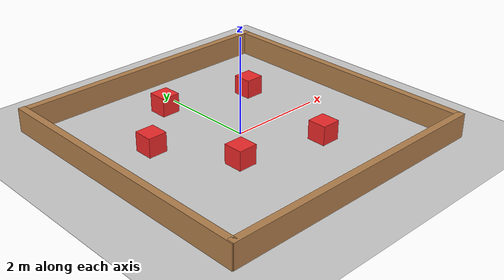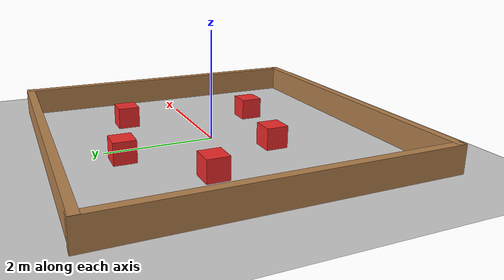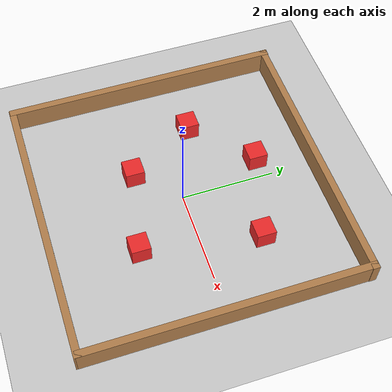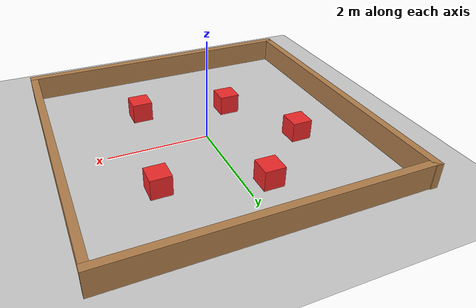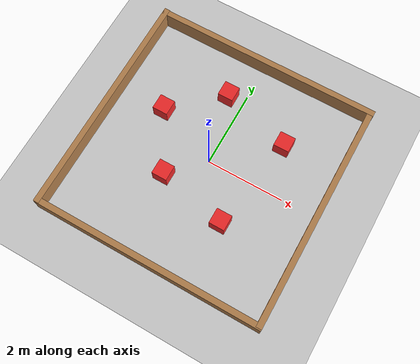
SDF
<sdf version="1.7">
 <world name="default">
  <light name="sun" type="directional">
   <pose>0 0 10 0 -0 0</pose>
   <diffuse>0.8 0.8 0.8 1</diffuse>
   <specular>0.2 0.2 0.2 1</specular>
   <attenuation>
    <range>1000</range>
    <constant>0.9</constant>
    <linear>0.01</linear>
    <quadratic>0.001</quadratic>
   </attenuation>
   <direction>-0.5 0.1 -0.9</direction>
   <spot><inner_angle>0</inner_angle><outer_angle>0</outer_angle><falloff>0</falloff></spot>
  </light>
  <model name="ground_plane">
   <static>1</static>
   <link name="link">
    <collision name="collision">
     <geometry><plane><normal>0 0 1</normal><size>100 100</size></plane></geometry>
     <surface>
      <contact><collide_bitmask>65535</collide_bitmask></contact>
      <friction><ode><mu>100</mu><mu2>50</mu2></ode></friction>
     </surface>
    </collision>
    <visual name="visual">
     <cast_shadows>0</cast_shadows>
     <geometry><plane><normal>0 0 1</normal><size>100 100</size></plane></geometry>
     <material>
      <script><uri>file://media/materials/scripts/gazebo.material</uri><name>Gazebo/Grey</name></script>
     </material>
    </visual>
   </link>
  </model>
  <physics name="default_physics" default="0" type="ode">
   <real_time_update_rate>1000</real_time_update_rate>
   <max_step_size>0.001</max_step_size>
   <real_time_factor>1</real_time_factor>
   <ode>
    <solver>
     <type>quick</type>
     <iters>150</iters>
     <precon_iters>0</precon_iters>
     <sor>1.4</sor>
     <use_dynamic_moi_rescaling>1</use_dynamic_moi_rescaling>
    </solver>
    <constraints>
     <cfm>1e-05</cfm>
     <erp>0.2</erp>
     <contact_max_correcting_vel>2000</contact_max_correcting_vel>
     <contact_surface_layer>0.01</contact_surface_layer>
    </constraints>
   </ode>
  </physics>
  <scene><ambient>0.4 0.4 0.4 1</ambient><background>0.7 0.7 0.7 1</background><shadows>1</shadows></scene>
  <gravity>0 0 -9.8</gravity>
  <magnetic_field>6e-06 2.3e-05 -4.2e-05</magnetic_field>
  <atmosphere type="adiabatic"/>
  <audio><device>default</device></audio>
  <spherical_coordinates>
   <surface_model>EARTH_WGS84</surface_model>
   <latitude_deg>0</latitude_deg>
   <longitude_deg>0</longitude_deg>
   <elevation>0</elevation>
   <heading_deg>0</heading_deg>
  </spherical_coordinates>
  <model name="turtlebot3_square_1">
   <link name="Wall_0">
    <pose>0 2.91352 0 0 -0 0</pose>
    <inertial>
     <inertia><ixx>0</ixx><ixy>0</ixy><ixz>0</ixz><iyy>0</iyy><iyz>0</iyz><izz>0</izz></inertia>
     <mass>0</mass>
    </inertial>
    <visual name="Wall_0_Visual">
     <pose>0 0 0.25 0 -0 0</pose>
     <geometry><box><size>6.0095 0.15 0.5</size></box></geometry>
     <material>
      <script><uri>file://media/materials/scripts/gazebo.material</uri><name>Gazebo/Wood</name></script>
      <ambient>1 1 1 1</ambient>
      <shader type="pixel"/>
     </material>
    </visual>
    <collision name="Wall_0_Collision">
     <pose>0 0 0.25 0 -0 0</pose>
     <geometry><box><size>6.0095 0.15 0.5</size></box></geometry>
     <surface>
      <friction>
       <ode><mu>1</mu><mu2>1</mu2><fdir1>0 0 0</fdir1><slip1>0</slip1><slip2>0</slip2></ode>
       <torsional>
        <coefficient>1</coefficient>
        <patch_radius>0</patch_radius>
        <surface_radius>0</surface_radius>
        <use_patch_radius>1</use_patch_radius>
        <ode><slip>0</slip></ode>
       </torsional>
      </friction>
      <bounce><restitution_coefficient>0</restitution_coefficient><threshold>1e+06</threshold></bounce>
      <contact>
       <collide_without_contact>0</collide_without_contact>
       <collide_without_contact_bitmask>1</collide_without_contact_bitmask>
       <collide_bitmask>1</collide_bitmask>
       <ode>
        <soft_cfm>0</soft_cfm>
        <soft_erp>0.2</soft_erp>
        <kp>1e+13</kp>
        <kd>1</kd>
        <max_vel>0.01</max_vel>
        <min_depth>0</min_depth>
       </ode>
       <bullet>
        <split_impulse>1</split_impulse>
        <split_impulse_penetration_threshold>-0.01</split_impulse_penetration_threshold>
        <soft_cfm>0</soft_cfm>
        <soft_erp>0.2</soft_erp>
        <kp>1e+13</kp>
        <kd>1</kd>
       </bullet>
      </contact>
     </surface>
    </collision>
   </link>
   <link name="Wall_2">
    <pose>-2.93948 4e-06 0 0 0 -1.5708</pose>
    <inertial>
     <inertia><ixx>0</ixx><ixy>0</ixy><ixz>0</ixz><iyy>0</iyy><iyz>0</iyz><izz>0</izz></inertia>
     <mass>0</mass>
    </inertial>
    <visual name="Wall_2_Visual">
     <pose>0 0 0.25 0 -0 0</pose>
     <geometry><box><size>6.009 0.15 0.5</size></box></geometry>
     <material>
      <script><uri>file://media/materials/scripts/gazebo.material</uri><name>Gazebo/Wood</name></script>
      <ambient>1 1 1 1</ambient>
      <shader type="pixel"/>
     </material>
    </visual>
    <collision name="Wall_2_Collision">
     <pose>0 0 0.25 0 -0 0</pose>
     <geometry><box><size>6.009 0.15 0.5</size></box></geometry>
     <surface>
      <friction>
       <ode><mu>1</mu><mu2>1</mu2><fdir1>0 0 0</fdir1><slip1>0</slip1><slip2>0</slip2></ode>
       <torsional>
        <coefficient>1</coefficient>
        <patch_radius>0</patch_radius>
        <surface_radius>0</surface_radius>
        <use_patch_radius>1</use_patch_radius>
        <ode><slip>0</slip></ode>
       </torsional>
      </friction>
      <bounce><restitution_coefficient>0</restitution_coefficient><threshold>1e+06</threshold></bounce>
      <contact>
       <collide_without_contact>0</collide_without_contact>
       <collide_without_contact_bitmask>1</collide_without_contact_bitmask>
       <collide_bitmask>1</collide_bitmask>
       <ode>
        <soft_cfm>0</soft_cfm>
        <soft_erp>0.2</soft_erp>
        <kp>1e+13</kp>
        <kd>1</kd>
        <max_vel>0.01</max_vel>
        <min_depth>0</min_depth>
       </ode>
       <bullet>
        <split_impulse>1</split_impulse>
        <split_impulse_penetration_threshold>-0.01</split_impulse_penetration_threshold>
        <soft_cfm>0</soft_cfm>
        <soft_erp>0.2</soft_erp>
        <kp>1e+13</kp>
        <kd>1</kd>
       </bullet>
      </contact>
     </surface>
    </collision>
   </link>
   <link name="Wall_3">
    <pose>0 -2.93928 0 0 -0 0</pose>
    <inertial>
     <inertia><ixx>0</ixx><ixy>0</ixy><ixz>0</ixz><iyy>0</iyy><iyz>0</iyz><izz>0</izz></inertia>
     <mass>0</mass>
    </inertial>
    <visual name="Wall_3_Visual">
     <pose>0 0 0.25 0 -0 0</pose>
     <geometry><box><size>5.98504 0.15 0.5</size></box></geometry>
     <material>
      <script><uri>file://media/materials/scripts/gazebo.material</uri><name>Gazebo/Wood</name></script>
      <ambient>1 1 1 1</ambient>
      <shader type="pixel"/>
     </material>
    </visual>
    <collision name="Wall_3_Collision">
     <pose>0 0 0.25 0 -0 0</pose>
     <geometry><box><size>5.98504 0.15 0.5</size></box></geometry>
     <surface>
      <friction>
       <ode><mu>1</mu><mu2>1</mu2><fdir1>0 0 0</fdir1><slip1>0</slip1><slip2>0</slip2></ode>
       <torsional>
        <coefficient>1</coefficient>
        <patch_radius>0</patch_radius>
        <surface_radius>0</surface_radius>
        <use_patch_radius>1</use_patch_radius>
        <ode><slip>0</slip></ode>
       </torsional>
      </friction>
      <bounce><restitution_coefficient>0</restitution_coefficient><threshold>1e+06</threshold></bounce>
      <contact>
       <collide_without_contact>0</collide_without_contact>
       <collide_without_contact_bitmask>1</collide_without_contact_bitmask>
       <collide_bitmask>1</collide_bitmask>
       <ode>
        <soft_cfm>0</soft_cfm>
        <soft_erp>0.2</soft_erp>
        <kp>1e+13</kp>
        <kd>1</kd>
        <max_vel>0.01</max_vel>
        <min_depth>0</min_depth>
       </ode>
       <bullet>
        <split_impulse>1</split_impulse>
        <split_impulse_penetration_threshold>-0.01</split_impulse_penetration_threshold>
        <soft_cfm>0</soft_cfm>
        <soft_erp>0.2</soft_erp>
        <kp>1e+13</kp>
        <kd>1</kd>
       </bullet>
      </contact>
     </surface>
    </collision>
   </link>
   <link name="Wall_4">
    <pose>2.92002 4e-06 0 0 -0 1.5708</pose>
    <inertial>
     <inertia><ixx>0</ixx><ixy>0</ixy><ixz>0</ixz><iyy>0</iyy><iyz>0</iyz><izz>0</izz></inertia>
     <mass>0</mass>
    </inertial>
    <visual name="Wall_4_Visual">
     <pose>0 0 0.25 0 -0 0</pose>
     <geometry><box><size>5.96238 0.15 0.5</size></box></geometry>
     <material>
      <script><uri>file://media/materials/scripts/gazebo.material</uri><name>Gazebo/Wood</name></script>
      <ambient>1 1 1 1</ambient>
      <shader type="pixel"/>
     </material>
    </visual>
    <collision name="Wall_4_Collision">
     <pose>0 0 0.25 0 -0 0</pose>
     <geometry><box><size>5.96238 0.15 0.5</size></box></geometry>
     <surface>
      <friction>
       <ode><mu>1</mu><mu2>1</mu2><fdir1>0 0 0</fdir1><slip1>0</slip1><slip2>0</slip2></ode>
       <torsional>
        <coefficient>1</coefficient>
        <patch_radius>0</patch_radius>
        <surface_radius>0</surface_radius>
        <use_patch_radius>1</use_patch_radius>
        <ode><slip>0</slip></ode>
       </torsional>
      </friction>
      <bounce><restitution_coefficient>0</restitution_coefficient><threshold>1e+06</threshold></bounce>
      <contact>
       <collide_without_contact>0</collide_without_contact>
       <collide_without_contact_bitmask>1</collide_without_contact_bitmask>
       <collide_bitmask>1</collide_bitmask>
       <ode>
        <soft_cfm>0</soft_cfm>
        <soft_erp>0.2</soft_erp>
        <kp>1e+13</kp>
        <kd>1</kd>
        <max_vel>0.01</max_vel>
        <min_depth>0</min_depth>
       </ode>
       <bullet>
        <split_impulse>1</split_impulse>
        <split_impulse_penetration_threshold>-0.01</split_impulse_penetration_threshold>
        <soft_cfm>0</soft_cfm>
        <soft_erp>0.2</soft_erp>
        <kp>1e+13</kp>
        <kd>1</kd>
       </bullet>
      </contact>
     </surface>
    </collision>
   </link>
   <static>1</static>
  </model>
  <model name="block_box_red">
   <link name="link">
    <inertial>
     <mass>1</mass>
     <inertia>
      <ixx>0.166667</ixx>
      <ixy>0</ixy>
      <ixz>0</ixz>
      <iyy>0.166667</iyy>
      <iyz>0</iyz>
      <izz>0.166667</izz>
     </inertia>
    </inertial>
    <visual name="visual">
     <geometry><box><size>0.4 0.4 0.4</size></box></geometry>
     <material>
      <script><name>Gazebo/Grey</name><uri>file://media/materials/scripts/gazebo.material</uri></script>
      <shader type="pixel"><normal_map>__default__</normal_map></shader>
      <ambient>0.937 0.161 0.161 1</ambient>
      <diffuse>0.7 0.7 0.7 1</diffuse>
      <specular>0.01 0.01 0.01 1</specular>
      <emissive>0 0 0 1</emissive>
     </material>
    </visual>
    <collision name="collision">
     <geometry><box><size>0.4 0.4 0.4</size></box></geometry>
     <surface>
      <friction>
       <ode><mu>1</mu><mu2>1</mu2><fdir1>0 0 0</fdir1><slip1>0</slip1><slip2>0</slip2></ode>
       <torsional>
        <coefficient>1</coefficient>
        <patch_radius>0</patch_radius>
        <surface_radius>0</surface_radius>
        <use_patch_radius>1</use_patch_radius>
        <ode><slip>0</slip></ode>
       </torsional>
      </friction>
      <bounce><restitution_coefficient>0</restitution_coefficient><threshold>1e+06</threshold></bounce>
      <contact>
       <collide_without_contact>0</collide_without_contact>
       <collide_without_contact_bitmask>1</collide_without_contact_bitmask>
       <collide_bitmask>1</collide_bitmask>
       <ode>
        <soft_cfm>0</soft_cfm>
        <soft_erp>0.2</soft_erp>
        <kp>1e+13</kp>
        <kd>1</kd>
        <max_vel>0.01</max_vel>
        <min_depth>0</min_depth>
       </ode>
       <bullet>
        <split_impulse>1</split_impulse>
        <split_impulse_penetration_threshold>-0.01</split_impulse_penetration_threshold>
        <soft_cfm>0</soft_cfm>
        <soft_erp>0.2</soft_erp>
        <kp>1e+13</kp>
        <kd>1</kd>
       </bullet>
      </contact>
     </surface>
    </collision>
   </link>
   <static>1</static>
   <pose>1.40904 1.23436 0.191071 0 -0 0</pose>
  </model>
  <model name="block_box_red_0">
   <link name="link">
    <inertial>
     <mass>1</mass>
     <inertia>
      <ixx>0.166667</ixx>
      <ixy>0</ixy>
      <ixz>0</ixz>
      <iyy>0.166667</iyy>
      <iyz>0</iyz>
      <izz>0.166667</izz>
     </inertia>
    </inertial>
    <visual name="visual">
     <geometry><box><size>0.4 0.4 0.4</size></box></geometry>
     <material>
      <script><name>Gazebo/Grey</name><uri>file://media/materials/scripts/gazebo.material</uri></script>
      <shader type="pixel"><normal_map>__default__</normal_map></shader>
      <ambient>0.937 0.161 0.161 1</ambient>
      <diffuse>0.7 0.7 0.7 1</diffuse>
      <specular>0.01 0.01 0.01 1</specular>
      <emissive>0 0 0 1</emissive>
     </material>
    </visual>
    <collision name="collision">
     <geometry><box><size>0.4 0.4 0.4</size></box></geometry>
     <surface>
      <friction>
       <ode><mu>1</mu><mu2>1</mu2><fdir1>0 0 0</fdir1><slip1>0</slip1><slip2>0</slip2></ode>
       <torsional>
        <coefficient>1</coefficient>
        <patch_radius>0</patch_radius>
        <surface_radius>0</surface_radius>
        <use_patch_radius>1</use_patch_radius>
        <ode><slip>0</slip></ode>
       </torsional>
      </friction>
      <bounce><restitution_coefficient>0</restitution_coefficient><threshold>1e+06</threshold></bounce>
      <contact>
       <collide_without_contact>0</collide_without_contact>
       <collide_without_contact_bitmask>1</collide_without_contact_bitmask>
       <collide_bitmask>1</collide_bitmask>
       <ode>
        <soft_cfm>0</soft_cfm>
        <soft_erp>0.2</soft_erp>
        <kp>1e+13</kp>
        <kd>1</kd>
        <max_vel>0.01</max_vel>
        <min_depth>0</min_depth>
       </ode>
       <bullet>
        <split_impulse>1</split_impulse>
        <split_impulse_penetration_threshold>-0.01</split_impulse_penetration_threshold>
        <soft_cfm>0</soft_cfm>
        <soft_erp>0.2</soft_erp>
        <kp>1e+13</kp>
        <kd>1</kd>
       </bullet>
      </contact>
     </surface>
    </collision>
   </link>
   <static>1</static>
   <pose>-1.6521 0.642793 0.205218 0 -0 0</pose>
  </model>
  <model name="block_box_red_1">
   <link name="link">
    <inertial>
     <mass>1</mass>
     <inertia>
      <ixx>0.166667</ixx>
      <ixy>0</ixy>
      <ixz>0</ixz>
      <iyy>0.166667</iyy>
      <iyz>0</iyz>
      <izz>0.166667</izz>
     </inertia>
    </inertial>
    <visual name="visual">
     <geometry><box><size>0.4 0.4 0.4</size></box></geometry>
     <material>
      <script><name>Gazebo/Grey</name><uri>file://media/materials/scripts/gazebo.material</uri></script>
      <shader type="pixel"><normal_map>__default__</normal_map></shader>
      <ambient>0.937 0.161 0.161 1</ambient>
      <diffuse>0.7 0.7 0.7 1</diffuse>
      <specular>0.01 0.01 0.01 1</specular>
      <emissive>0 0 0 1</emissive>
     </material>
    </visual>
    <collision name="collision">
     <geometry><box><size>0.4 0.4 0.4</size></box></geometry>
     <surface>
      <friction>
       <ode><mu>1</mu><mu2>1</mu2><fdir1>0 0 0</fdir1><slip1>0</slip1><slip2>0</slip2></ode>
       <torsional>
        <coefficient>1</coefficient>
        <patch_radius>0</patch_radius>
        <surface_radius>0</surface_radius>
        <use_patch_radius>1</use_patch_radius>
        <ode><slip>0</slip></ode>
       </torsional>
      </friction>
      <bounce><restitution_coefficient>0</restitution_coefficient><threshold>1e+06</threshold></bounce>
      <contact>
       <collide_without_contact>0</collide_without_contact>
       <collide_without_contact_bitmask>1</collide_without_contact_bitmask>
       <collide_bitmask>1</collide_bitmask>
       <ode>
        <soft_cfm>0</soft_cfm>
        <soft_erp>0.2</soft_erp>
        <kp>1e+13</kp>
        <kd>1</kd>
        <max_vel>0.01</max_vel>
        <min_depth>0</min_depth>
       </ode>
       <bullet>
        <split_impulse>1</split_impulse>
        <split_impulse_penetration_threshold>-0.01</split_impulse_penetration_threshold>
        <soft_cfm>0</soft_cfm>
        <soft_erp>0.2</soft_erp>
        <kp>1e+13</kp>
        <kd>1</kd>
       </bullet>
      </contact>
     </surface>
    </collision>
   </link>
   <static>1</static>
   <pose>1.00015 -1.23159 0.206335 0 -0 0</pose>
  </model>
  <model name="block_box_red_2">
   <link name="link">
    <inertial>
     <mass>1</mass>
     <inertia>
      <ixx>0.166667</ixx>
      <ixy>0</ixy>
      <ixz>0</ixz>
      <iyy>0.166667</iyy>
      <iyz>0</iyz>
      <izz>0.166667</izz>
     </inertia>
    </inertial>
    <visual name="visual">
     <geometry><box><size>0.4 0.4 0.4</size></box></geometry>
     <material>
      <script><name>Gazebo/Grey</name><uri>file://media/materials/scripts/gazebo.material</uri></script>
      <shader type="pixel"><normal_map>__default__</normal_map></shader>
      <ambient>0.937 0.161 0.161 1</ambient>
      <diffuse>0.7 0.7 0.7 1</diffuse>
      <specular>0.01 0.01 0.01 1</specular>
      <emissive>0 0 0 1</emissive>
     </material>
    </visual>
    <collision name="collision">
     <geometry><box><size>0.4 0.4 0.4</size></box></geometry>
     <surface>
      <friction>
       <ode><mu>1</mu><mu2>1</mu2><fdir1>0 0 0</fdir1><slip1>0</slip1><slip2>0</slip2></ode>
       <torsional>
        <coefficient>1</coefficient>
        <patch_radius>0</patch_radius>
        <surface_radius>0</surface_radius>
        <use_patch_radius>1</use_patch_radius>
        <ode><slip>0</slip></ode>
       </torsional>
      </friction>
      <bounce><restitution_coefficient>0</restitution_coefficient><threshold>1e+06</threshold></bounce>
      <contact>
       <collide_without_contact>0</collide_without_contact>
       <collide_without_contact_bitmask>1</collide_without_contact_bitmask>
       <collide_bitmask>1</collide_bitmask>
       <ode>
        <soft_cfm>0</soft_cfm>
        <soft_erp>0.2</soft_erp>
        <kp>1e+13</kp>
        <kd>1</kd>
        <max_vel>0.01</max_vel>
        <min_depth>0</min_depth>
       </ode>
       <bullet>
        <split_impulse>1</split_impulse>
        <split_impulse_penetration_threshold>-0.01</split_impulse_penetration_threshold>
        <soft_cfm>0</soft_cfm>
        <soft_erp>0.2</soft_erp>
        <kp>1e+13</kp>
        <kd>1</kd>
       </bullet>
      </contact>
     </surface>
    </collision>
   </link>
   <static>1</static>
   <pose>-0.787263 -0.83767 0.214622 0 -0 0</pose>
  </model>
  <model name="block_box_red_3">
   <link name="link">
    <inertial>
     <mass>1</mass>
     <inertia>
      <ixx>0.166667</ixx>
      <ixy>0</ixy>
      <ixz>0</ixz>
      <iyy>0.166667</iyy>
      <iyz>0</iyz>
      <izz>0.166667</izz>
     </inertia>
    </inertial>
    <visual name="visual">
     <geometry><box><size>0.4 0.4 0.4</size></box></geometry>
     <material>
      <script><name>Gazebo/Grey</name><uri>file://media/materials/scripts/gazebo.material</uri></script>
      <shader type="pixel"><normal_map>__default__</normal_map></shader>
      <ambient>0.937 0.161 0.161 1</ambient>
      <diffuse>0.7 0.7 0.7 1</diffuse>
      <specular>0.01 0.01 0.01 1</specular>
      <emissive>0 0 0 1</emissive>
     </material>
    </visual>
    <collision name="collision">
     <geometry><box><size>0.4 0.4 0.4</size></box></geometry>
     <surface>
      <friction>
       <ode><mu>1</mu><mu2>1</mu2><fdir1>0 0 0</fdir1><slip1>0</slip1><slip2>0</slip2></ode>
       <torsional>
        <coefficient>1</coefficient>
        <patch_radius>0</patch_radius>
        <surface_radius>0</surface_radius>
        <use_patch_radius>1</use_patch_radius>
        <ode><slip>0</slip></ode>
       </torsional>
      </friction>
      <bounce><restitution_coefficient>0</restitution_coefficient><threshold>1e+06</threshold></bounce>
      <contact>
       <collide_without_contact>0</collide_without_contact>
       <collide_without_contact_bitmask>1</collide_without_contact_bitmask>
       <collide_bitmask>1</collide_bitmask>
       <ode>
        <soft_cfm>0</soft_cfm>
        <soft_erp>0.2</soft_erp>
        <kp>1e+13</kp>
        <kd>1</kd>
        <max_vel>0.01</max_vel>
        <min_depth>0</min_depth>
       </ode>
       <bullet>
        <split_impulse>1</split_impulse>
        <split_impulse_penetration_threshold>-0.01</split_impulse_penetration_threshold>
        <soft_cfm>0</soft_cfm>
        <soft_erp>0.2</soft_erp>
        <kp>1e+13</kp>
        <kd>1</kd>
       </bullet>
      </contact>
     </surface>
    </collision>
   </link>
   <static>1</static>
   <pose>-0.426813 1.76329 0.2 0 -0 0</pose>
  </model>
 </world>
</sdf>
